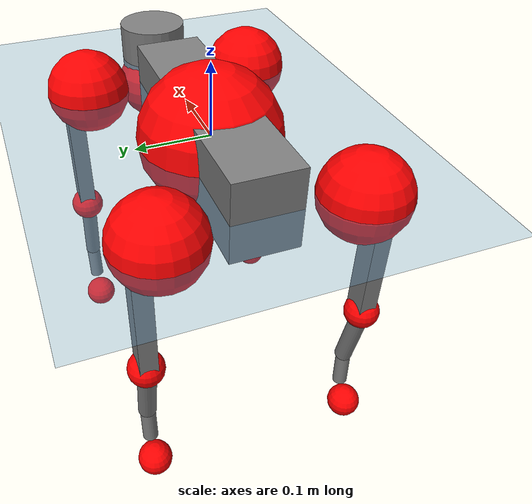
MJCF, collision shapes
<mujoco model="go2">
  <compiler angle="radian" assetdir="assets" balanceinertia="true" inertiafromgeom="false"/>

  <option timestep="0.005" density="1.2" viscosity="2e-05"/>

  <size nkey="1"/>

  <visual>
    <quality shadowsize="8192"/>
    <map shadowclip="0.5"/>
  </visual>

  <default>
    <default class="/">
      <geom contype="0" conaffinity="0" group="1" solref="-1000 -80"/>
      <site size="0.01 0.005 0.005" group="5"/>
      <general forcelimited="true" biastype="affine" gainprm="20" biasprm="0 -20 -0.5"/>
      <default class="go2">
        <joint armature="0.01" damping="0.01" frictionloss="0.2"/>
        <geom condim="1" margin="0.001"/>
        <default class="visual">
          <geom type="mesh" group="2"/>
        </default>
        <default class="collision">
          <geom group="3"/>
          <default class="foot">
            <geom size="0.022 0 0" condim="6" priority="1" friction="0.8 0.02 0.01" solimp="0.015 1 0.022"/>
          </default>
        </default>
        <default class="reward_collision_sphere">
          <geom group="5" rgba="1 0 0 1"/>
        </default>
      </default>
    </default>
  </default>

  <asset>
    <texture type="skybox" colorspace="auto" name="//unnamed_texture_0" builtin="gradient" rgb1="0.95 0.95 0.95" rgb2="0.95 0.95 0.95" width="100" height="600"/>
    <texture type="2d" colorspace="auto" name="texplane" builtin="checker" rgb1="0.345 0.575 0.748" rgb2="0.345 0.575 0.748" markrgb="1 1 1" width="512" height="512"/>
    <material name="MatPlane" class="/" texture="texplane" texuniform="true" texrepeat="2 2" specular="0.9"/>
    <material name="metal" class="/" rgba="0.9 0.95 0.95 1"/>
    <material name="black" class="/" rgba="0 0 0 1"/>
    <material name="white" class="/"/>
    <material name="gray" class="/" rgba="0.671705 0.692426 0.77427 1"/>
    <mesh name="base_0" class="/" file="base_0.obj"/>
    <mesh name="base_1" class="/" file="base_1.obj"/>
    <mesh name="base_2" class="/" file="base_2.obj"/>
    <mesh name="base_3" class="/" file="base_3.obj"/>
    <mesh name="base_4" class="/" file="base_4.obj"/>
    <mesh name="hip_0" class="/" file="hip_0.obj"/>
    <mesh name="hip_1" class="/" file="hip_1.obj"/>
    <mesh name="thigh_0" class="/" file="thigh_0.obj"/>
    <mesh name="thigh_1" class="/" file="thigh_1.obj"/>
    <mesh name="thigh_mirror_0" class="/" file="thigh_mirror_0.obj"/>
    <mesh name="thigh_mirror_1" class="/" file="thigh_mirror_1.obj"/>
    <mesh name="calf_0" class="/" file="calf_0.obj"/>
    <mesh name="calf_1" class="/" file="calf_1.obj"/>
    <mesh name="calf_mirror_0" class="/" file="calf_mirror_0.obj"/>
    <mesh name="calf_mirror_1" class="/" file="calf_mirror_1.obj"/>
    <mesh name="foot" class="/" file="foot.obj"/>
  </asset>

  <worldbody>
    <geom name="floor" class="/" size="100 100 0.125" type="plane" group="0" material="MatPlane"/>
    <light name="toplight_shadow" class="/" pos="0 0 5" dir="0.0990148 0.0990148 -0.990148" type="directional" ambient="0.04 0.04 0.04" diffuse="0.55 0.55 0.55" specular="0.12 0.12 0.12"/>
    <light name="toplight_fill" class="/" pos="0 0 5" dir="0.0990148 0.0990148 -0.990148" type="directional" castshadow="false" ambient="0.04 0.04 0.04" diffuse="0.3 0.3 0.3" specular="0.08 0.08 0.08"/>
    <body name="trunk" childclass="go2" pos="0.000118612 4.06416e-05 -0.000612539" quat="1 7.485e-06 9.58944e-06 9.10947e-06">
      <inertial pos="0.0195498 0.00196721 -0.00379384" quat="-0.000419112 0.713467 -0.00192955 0.700686" mass="6.01631" diaginertia="0.0685521 0.118214 0.0157207"/>
      <joint name="//unnamed_joint_0" type="free" armature="0" damping="0" frictionloss="0"/>
      <geom name="//unnamed_geom_1" class="visual" material="black" mesh="base_0"/>
      <geom name="//unnamed_geom_2" class="visual" material="black" mesh="base_1"/>
      <geom name="//unnamed_geom_3" class="visual" material="black" mesh="base_2"/>
      <geom name="//unnamed_geom_4" class="visual" material="white" mesh="base_3"/>
      <geom name="//unnamed_geom_5" class="visual" material="gray" mesh="base_4"/>
      <geom name="trunk_1" class="collision" size="0.179244 0.044549 0.0543164" type="box"/>
      <geom name="trunk_2" class="collision" size="0.047646 0.0428814" pos="0.259197 0 0.0091429" type="cylinder"/>
      <geom name="trunk_3" class="collision" size="0.0447872" pos="0.266473 0 -0.0548574"/>
      <geom name="//unnamed_geom_9" class="reward_collision_sphere" size="0.095292"/>
      <geom name="//unnamed_geom_10" class="reward_collision_sphere" size="0.0571752" pos="0.25465 0 -0.0411431"/>
      <site name="imu" pos="-0.0284175 0.00203825 0.0335429" size="0.0095292"/>
      <camera name="track" pos="0 -2.07001 0" quat="0.707107 0.707107 0 0" mode="trackcom"/>
      <camera name="ego_camera" pos="0.283752 0 0.0411431" quat="-0.5 -0.5 0.5 0.5"/>
      <body name="FL_hip" pos="0.174726 0.0485643 0.000178383" quat="1 -4.6099e-05 0.000150997 -0.000161497">
        <inertial pos="-0.00640098 0.00201223 0.000328001" quat="0.497525 0.49829 0.505571 0.498572" mass="0.599178" diaginertia="0.000556012 0.000720535 0.000309049"/>
        <joint name="FL_hip_joint" pos="0 0 0" axis="0.999994 0.00271603 -0.00206052" stiffness="0.00249962" range="-1.02974 1.04568" armature="0.00949562" damping="0.00342184" frictionloss="0.176992"/>
        <geom name="//unnamed_geom_11" class="visual" material="metal" mesh="hip_0"/>
        <geom name="//unnamed_geom_12" class="visual" material="gray" mesh="hip_1"/>
        <geom name="//unnamed_geom_13" class="collision" size="0.0438343 0.0190584" pos="0 0.0828006 0" quat="0.707107 0.707107 0 0" type="cylinder"/>
        <geom name="//unnamed_geom_14" class="reward_collision_sphere" size="0.0571752" pos="0 0.0724505 0"/>
        <body name="FL_thigh" pos="-0.00122713 0.0981638 0.00189254" quat="1 9.81427e-05 8.05782e-05 0.000133303">
          <inertial pos="-0.0035715 -0.0229867 -0.0292887" quat="0.82991 0.084234 -0.0197383 0.551148" mass="0.965768" diaginertia="0.00371295 0.00687419 0.000532705"/>
          <joint name="FL_thigh_joint" pos="0 0 0" axis="-0.000833359 0.999995 -0.00290432" stiffness="0.00664977" range="-1.57097 3.47481" armature="0.00931385" damping="0.00485805" frictionloss="0.195718"/>
          <geom name="//unnamed_geom_15" class="visual" material="metal" mesh="thigh_0"/>
          <geom name="//unnamed_geom_16" class="visual" material="gray" mesh="thigh_1"/>
          <geom name="//unnamed_geom_17" class="collision" size="0.101486 0.0116733 0.0161996" pos="0 0 -0.0973719" quat="0.707107 0 0.707107 0" type="box"/>
          <body name="FL_calf" pos="-0.000749509 -0.000312762 -0.193749" quat="0.999999 4.41589e-05 -0.00105946 -0.000128028">
            <inertial pos="0.00521346 -0.000535333 -0.128798" quat="0.710257 0.00160594 -0.00432718 0.703928" mass="0.209316" diaginertia="0.000928575 0.00170295 3.37975e-05"/>
            <joint name="FL_calf_joint" pos="0 0 0" axis="-0.00689833 0.999975 -0.00163408" stiffness="0.00119965" range="-2.71461 -0.837155" armature="0.00990277" damping="0.00659834" frictionloss="0.184721"/>
            <geom name="//unnamed_geom_18" class="visual" material="gray" mesh="calf_0"/>
            <geom name="//unnamed_geom_19" class="visual" material="black" mesh="calf_1"/>
            <geom name="FL_calf0" class="collision" size="0.011435 0.0571752" pos="0.0072757 0 -0.0548574" quat="0.994493 0 -0.104807 0" type="cylinder"/>
            <geom name="//unnamed_geom_21" class="collision" size="0.0104821 0.0309699" pos="0.0181893 0 -0.135315" quat="0.999688 0 0.0249974 0" type="cylinder"/>
            <geom name="//unnamed_geom_22" class="visual" pos="0 0 -0.194744" quat="1 0 0 0" material="black" mesh="foot"/>
            <geom name="FL_foot" class="foot" size="0.0185541" pos="-0.00181893 0 -0.194744"/>
            <geom name="//unnamed_geom_24" class="reward_collision_sphere" size="0.023823"/>
            <geom name="//unnamed_geom_25" class="reward_collision_sphere" size="0.023823" pos="-0.00181893 0 -0.194744"/>
            <site name="FL_foot" class="foot" pos="-0.00181893 0 -0.194744" size="0.0095292"/>
          </body>
        </body>
      </body>
      <body name="FR_hip" pos="0.175363 -0.0472543 -0.000288322" quat="1 -8.29206e-05 -0.000539434 6.08826e-05">
        <inertial pos="-0.00473949 -0.00148019 -0.000120843" quat="0.498236 0.505834 0.499136 0.496745" mass="0.566256" diaginertia="0.000533989 0.00069738 0.00030664"/>
        <joint name="FR_hip_joint" pos="0 0 0" axis="0.999992 -0.00295353 -0.00256606" range="-1.02764 1.00829" armature="0.00965893" damping="0.0101513" frictionloss="0.189536"/>
        <geom name="//unnamed_geom_26" class="visual" pos="0 1.05164e-09 4.5107e-08" quat="4.63268e-05 1 0 0" material="metal" mesh="hip_0"/>
        <geom name="//unnamed_geom_27" class="visual" pos="0 1.70483e-09 -1.11567e-07" quat="4.63268e-05 1 0 0" material="gray" mesh="hip_1"/>
        <geom name="//unnamed_geom_28" class="collision" size="0.0438343 0.0190584" pos="0 -0.0828006 0" quat="0.707107 0.707107 0 0" type="cylinder"/>
        <geom name="//unnamed_geom_29" class="reward_collision_sphere" size="0.0571752" pos="0 -0.0724505 0"/>
        <body name="FR_thigh" pos="0.0027635 -0.0981057 0.000654201" quat="1 0.000163966 9.2518e-05 0.000499235">
          <inertial pos="-0.00280929 0.022951 -0.0298754" quat="0.551624 -0.0200504 0.0846216 0.829547" mass="1.03547" diaginertia="0.00371698 0.00722898 0.000576599"/>
          <joint name="FR_thigh_joint" pos="0 0 0" axis="0.00740214 -0.999957 0.00556805" range="-3.4422 1.52806" armature="0.00939916" damping="0.00264215" frictionloss="0.195971"/>
          <geom name="//unnamed_geom_30" class="visual" material="metal" mesh="thigh_mirror_0"/>
          <geom name="//unnamed_geom_31" class="visual" material="gray" mesh="thigh_mirror_1"/>
          <geom name="//unnamed_geom_32" class="collision" size="0.101486 0.0116733 0.0161996" pos="0 0 -0.0973719" quat="0.707107 0 0.707107 0" type="box"/>
          <body name="FR_calf" pos="0.00189373 -0.00112716 -0.194794" quat="1 3.7558e-05 2.50279e-05 -0.000157908">
            <inertial pos="0.00662059 0.00131571 -0.127313" quat="0.704007 -1.36638e-05 0.00121839 0.710192" mass="0.202626" diaginertia="0.000926259 0.00174362 3.40668e-05"/>
            <joint name="FR_calf_joint" pos="0 0 0" axis="-0.00107701 -0.999944 0.0105049" stiffness="0.00254913" range="0.820038 2.69291" armature="0.00954759" damping="0.0165759" frictionloss="0.167424"/>
            <geom name="//unnamed_geom_33" class="visual" material="gray" mesh="calf_mirror_0"/>
            <geom name="//unnamed_geom_34" class="visual" material="black" mesh="calf_mirror_1"/>
            <geom name="FR_calf0" class="collision" size="0.012388 0.0571752" pos="0.00909463 0 -0.0548574" quat="0.995004 0 -0.0998334 0" type="cylinder"/>
            <geom name="//unnamed_geom_36" class="collision" size="0.0104821 0.0309699" pos="0.0181893 0 -0.135315" quat="0.999688 0 0.0249974 0" type="cylinder"/>
            <geom name="//unnamed_geom_37" class="visual" pos="0 0 -0.194744" quat="1 0 0 0" material="black" mesh="foot"/>
            <geom name="FR_foot" class="foot" size="0.0223306" pos="-0.00181893 0 -0.194744"/>
            <geom name="//unnamed_geom_39" class="reward_collision_sphere" size="0.023823"/>
            <geom name="//unnamed_geom_40" class="reward_collision_sphere" size="0.023823" pos="-0.00181893 0 -0.194744"/>
            <site name="FR_foot" class="foot" pos="-0.00181893 0 -0.194744" size="0.0095292"/>
          </body>
        </body>
      </body>
      <body name="RL_hip" pos="-0.175252 0.0496791 -0.000813086" quat="1 0.000129958 0.0001036 6.93529e-05">
        <inertial pos="0.00551701 0.000910189 -0.000283579" quat="0.503186 0.508603 0.490664 0.497369" mass="0.569062" diaginertia="0.000543474 0.000710571 0.000310302"/>
        <joint name="RL_hip_joint" pos="0 0 0" axis="-0.999847 0.0174691 -0.000690221" range="-1.05777 1.05857" armature="0.00953774" damping="0.0103061" frictionloss="0.185039"/>
        <geom name="//unnamed_geom_41" class="visual" pos="4.20526e-11 0 8.2433e-09" quat="4.63268e-05 0 1 0" material="metal" mesh="hip_0"/>
        <geom name="//unnamed_geom_42" class="visual" pos="6.81724e-11 0 7.31063e-09" quat="4.63268e-05 0 1 0" material="gray" mesh="hip_1"/>
        <geom name="//unnamed_geom_43" class="collision" size="0.0438343 0.0190584" pos="0 0.0828006 0" quat="0.707107 0.707107 0 0" type="cylinder"/>
        <geom name="//unnamed_geom_44" class="reward_collision_sphere" size="0.0571752" pos="0 0.0724505 0"/>
        <body name="RL_thigh" pos="-0.000175214 0.0973056 -0.000815226" quat="1 -0.000153701 -0.000149593 -1.43142e-05">
          <inertial pos="-0.00233532 -0.023371 -0.0300269" quat="0.831405 0.0851748 -0.0236498 0.548591" mass="1.00618" diaginertia="0.00380159 0.0071502 0.000570851"/>
          <joint name="RL_thigh_joint" pos="0 0 0" axis="-0.00970126 0.999952 -0.00143993" range="-0.519125 4.54287" armature="0.00951563" damping="0.00888724" frictionloss="0.189204"/>
          <geom name="//unnamed_geom_45" class="visual" material="metal" mesh="thigh_0"/>
          <geom name="//unnamed_geom_46" class="visual" material="gray" mesh="thigh_1"/>
          <geom name="//unnamed_geom_47" class="collision" size="0.101486 0.0116733 0.0161996" pos="0 0 -0.0973719" quat="0.707107 0 0.707107 0" type="box"/>
          <body name="RL_calf" pos="0.00156462 0.000129331 -0.194705" quat="1 9.12373e-05 -0.000751919 -6.52546e-05">
            <inertial pos="0.00675425 0.000441886 -0.129733" quat="0.710672 0.00154165 -0.00450124 0.703507" mass="0.210602" diaginertia="0.000967851 0.00183633 3.61048e-05"/>
            <joint name="RL_calf_joint" pos="0 0 0" axis="0.0129043 0.999892 -0.00702253" range="-2.71881 -0.88673" armature="0.00937271" damping="0.000664874" frictionloss="0.183983"/>
            <geom name="//unnamed_geom_48" class="visual" material="gray" mesh="calf_0"/>
            <geom name="//unnamed_geom_49" class="visual" material="black" mesh="calf_1"/>
            <geom name="RL_calf0" class="collision" size="0.012388 0.0571752" pos="0.00909463 0 -0.0548574" quat="0.995004 0 -0.0998334 0" type="cylinder"/>
            <geom name="//unnamed_geom_51" class="collision" size="0.0104821 0.0309699" pos="0.0181893 0 -0.135315" quat="0.999688 0 0.0249974 0" type="cylinder"/>
            <geom name="//unnamed_geom_52" class="visual" pos="0 0 -0.194744" quat="1 0 0 0" material="black" mesh="foot"/>
            <geom name="RL_foot" class="foot" size="0.0165987" pos="-0.00181893 0 -0.194744"/>
            <geom name="//unnamed_geom_54" class="reward_collision_sphere" size="0.023823"/>
            <geom name="//unnamed_geom_55" class="reward_collision_sphere" size="0.023823" pos="-0.00181893 0 -0.194744"/>
            <site name="RL_foot" class="foot" pos="-0.00181893 0 -0.194744" size="0.0095292"/>
          </body>
        </body>
      </body>
      <body name="RR_hip" pos="-0.17568 -0.0486382 -0.00251042" quat="1 -0.000194229 0.000858187 -0.000159955">
        <inertial pos="0.00438515 -0.00268405 0.000878695" quat="0.502495 0.496875 0.488455 0.511884" mass="0.590975" diaginertia="0.000548604 0.000711843 0.000306333"/>
        <joint name="RR_hip_joint" pos="0 0 0" axis="-0.999981 0.00483121 0.00388518" stiffness="0.0017812" range="-1.0779 1.03771" armature="0.00864286" damping="0.0122307" frictionloss="0.190785"/>
        <geom name="//unnamed_geom_56" class="visual" pos="-3.77063e-11 1.05164e-09 -3.68637e-08" quat="2.14617e-09 4.63268e-05 4.63268e-05 -1" material="metal" mesh="hip_0"/>
        <geom name="//unnamed_geom_57" class="visual" pos="-7.89229e-11 1.70483e-09 1.18877e-07" quat="2.14617e-09 4.63268e-05 4.63268e-05 -1" material="gray" mesh="hip_1"/>
        <geom name="//unnamed_geom_58" class="collision" size="0.0438343 0.0190584" pos="0 -0.0828006 0" quat="0.707107 0.707107 0 0" type="cylinder"/>
        <geom name="//unnamed_geom_59" class="reward_collision_sphere" size="0.0571752" pos="0 -0.0724505 0"/>
        <body name="RR_thigh" pos="-0.000222568 -0.0990042 -0.00325568" quat="1 -7.70048e-05 -6.70106e-05 -0.000260395">
          <inertial pos="-0.00318317 0.0256412 -0.0302909" quat="0.551575 -0.0174987 0.0797793 0.830117" mass="0.963459" diaginertia="0.00357044 0.0067434 0.000540465"/>
          <joint name="RR_thigh_joint" pos="0 0 0" axis="-0.00555295 -0.999984 0.000926433" stiffness="0.00122209" range="-4.55823 0.48318" armature="0.0108048" damping="0.0144838" frictionloss="0.181263"/>
          <geom name="//unnamed_geom_60" class="visual" material="metal" mesh="thigh_mirror_0"/>
          <geom name="//unnamed_geom_61" class="visual" material="gray" mesh="thigh_mirror_1"/>
          <geom name="//unnamed_geom_62" class="collision" size="0.101486 0.0116733 0.0161996" pos="0 0 -0.0973719" quat="0.707107 0 0.707107 0" type="box"/>
          <body name="RR_calf" pos="-0.000538679 -0.00184929 -0.194939" quat="1 0.000374159 -0.000363886 -4.34255e-05">
            <inertial pos="0.00479203 0.000901333 -0.129073" quat="0.696416 -0.00196821 -0.0031023 0.717629" mass="0.205463" diaginertia="0.000932265 0.00177325 3.5278e-05"/>
            <joint name="RR_calf_joint" pos="0 0 0" axis="-0.00358994 -0.99999 0.00269194" stiffness="0.00773628" range="0.863057 2.76185" armature="0.00941532" damping="0.0126262" frictionloss="0.192672"/>
            <geom name="//unnamed_geom_63" class="visual" material="gray" mesh="calf_mirror_0"/>
            <geom name="//unnamed_geom_64" class="visual" material="black" mesh="calf_mirror_1"/>
            <geom name="RR_calf0" class="collision" size="0.012388 0.0571752" pos="0.00909463 0 -0.0548574" quat="0.995004 0 -0.0998334 0" type="cylinder"/>
            <geom name="//unnamed_geom_66" class="collision" size="0.0104821 0.0309699" pos="0.0181893 0 -0.135315" quat="0.999688 0 0.0249974 0" type="cylinder"/>
            <geom name="//unnamed_geom_67" class="visual" pos="0 0 -0.194744" quat="1 0 0 0" material="black" mesh="foot"/>
            <geom name="RR_foot" class="foot" size="0.0208284" pos="-0.00181893 0 -0.194744"/>
            <geom name="//unnamed_geom_69" class="reward_collision_sphere" size="0.023823"/>
            <geom name="//unnamed_geom_70" class="reward_collision_sphere" size="0.023823" pos="-0.00181893 0 -0.194744"/>
            <site name="RR_foot" class="foot" pos="-0.00181893 0 -0.194744" size="0.0095292"/>
          </body>
        </body>
      </body>
    </body>
  </worldbody>

  <contact>
    <pair class="/" geom1="floor" geom2="FL_foot" name="//unnamed_contact_0"/>
    <pair class="/" geom1="floor" geom2="FR_foot" name="//unnamed_contact_1"/>
    <pair class="/" geom1="floor" geom2="RL_foot" name="//unnamed_contact_2"/>
    <pair class="/" geom1="floor" geom2="RR_foot" name="//unnamed_contact_3"/>
  </contact>

  <actuator>
    <general name="FL_hip" class="/" joint="FL_hip_joint" forcerange="-22.7981 22.7981" gainprm="20.1788" biasprm="0 -20.1788 -0.464944"/>
    <general name="FL_thigh" class="/" joint="FL_thigh_joint" forcerange="-20.5863 20.5863" gainprm="20.1788" biasprm="0 -20.1788 -0.464944"/>
    <general name="FL_calf" class="/" joint="FL_calf_joint" forcerange="-41.7959 41.7959" gainprm="20.1788" biasprm="0 -20.1788 -0.464944"/>
    <general name="FR_hip" class="/" joint="FR_hip_joint" forcerange="-23.2699 23.2699" gainprm="20.1788" biasprm="0 -20.1788 -0.464944"/>
    <general name="FR_thigh" class="/" joint="FR_thigh_joint" forcerange="-21.6181 21.6181" gainprm="20.1788" biasprm="0 -20.1788 -0.464944"/>
    <general name="FR_calf" class="/" joint="FR_calf_joint" forcerange="-44.4524 44.4524" gainprm="20.1788" biasprm="0 -20.1788 -0.464944"/>
    <general name="RL_hip" class="/" joint="RL_hip_joint" forcerange="-22.8568 22.8568" gainprm="20.1788" biasprm="0 -20.1788 -0.464944"/>
    <general name="RL_thigh" class="/" joint="RL_thigh_joint" forcerange="-22.6223 22.6223" gainprm="20.1788" biasprm="0 -20.1788 -0.464944"/>
    <general name="RL_calf" class="/" joint="RL_calf_joint" forcerange="-44.1855 44.1855" gainprm="20.1788" biasprm="0 -20.1788 -0.464944"/>
    <general name="RR_hip" class="/" joint="RR_hip_joint" forcerange="-20.5767 20.5767" gainprm="20.1788" biasprm="0 -20.1788 -0.464944"/>
    <general name="RR_thigh" class="/" joint="RR_thigh_joint" forcerange="-22.6326 22.6326" gainprm="20.1788" biasprm="0 -20.1788 -0.464944"/>
    <general name="RR_calf" class="/" joint="RR_calf_joint" forcerange="-43.4226 43.4226" gainprm="20.1788" biasprm="0 -20.1788 -0.464944"/>
  </actuator>

  <sensor>
    <gyro site="imu" name="imu_angular_velocity"/>
    <velocimeter site="imu" name="imu_linear_velocity"/>
    <framelinvel objtype="site" objname="FL_foot" name="FL_foot_global_linear_velocity"/>
    <framelinvel objtype="site" objname="FR_foot" name="FR_foot_global_linear_velocity"/>
    <framelinvel objtype="site" objname="RL_foot" name="RL_foot_global_linear_velocity"/>
    <framelinvel objtype="site" objname="RR_foot" name="RR_foot_global_linear_velocity"/>
  </sensor>

  <keyframe>
    <key name="home" qpos="0 0 0.325 1 0 0 0 0.1 0.8 -1.5 -0.1 -0.8 1.5 -0.1 0.8 -1.5 0.1 -0.8 1.5"/>
  </keyframe>
</mujoco>
